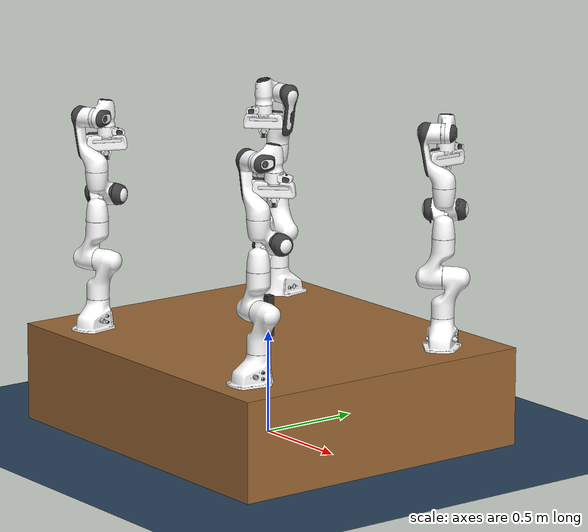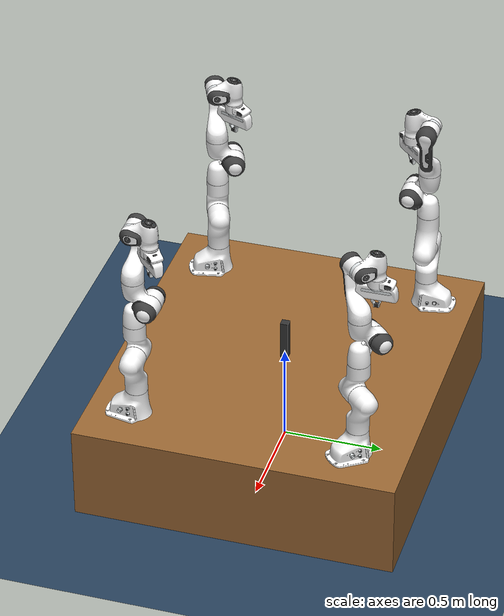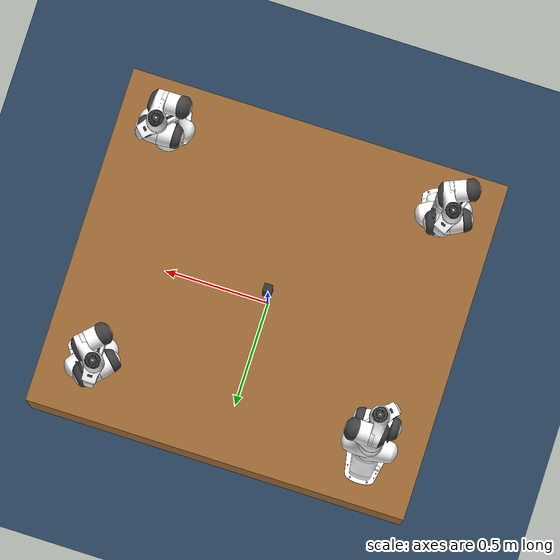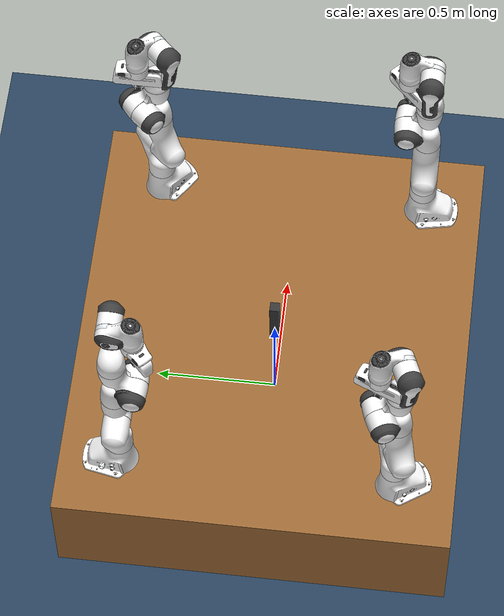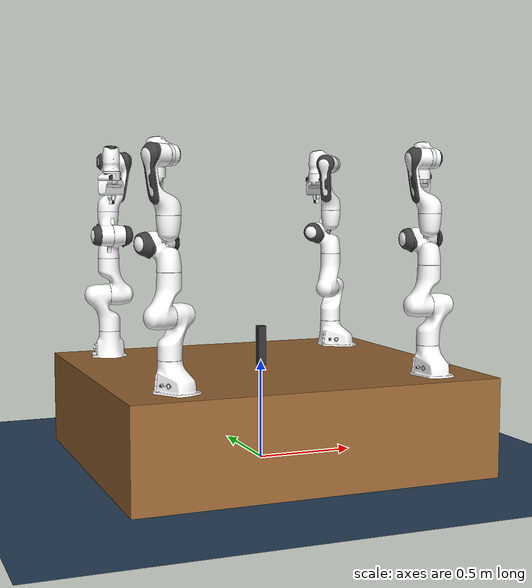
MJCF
<mujoco model="franka table scene (4 pandas original-assets)">
  <compiler angle="radian" meshdir="assets" autolimits="true"/>

  <option integrator="implicitfast"/>

  <statistic center="0 0 0.5" extent="2.0"/>

  <visual>
    <headlight diffuse="0.6 0.6 0.6" ambient="0.2 0.2 0.2" specular="0 0 0"/>
    <global azimuth="120" elevation="-20" offwidth="1280" offheight="720"/>
  </visual>

  <default>
    <default class="panda">
      <material specular="0.5" shininess="0.25"/>
      <joint armature="0.1" damping="1" axis="0 0 1" range="-2.8973 2.8973"/>
      <general dyntype="none" biastype="affine" ctrlrange="-2.8973 2.8973" forcerange="-87 87"/>
      <default class="finger">
        <joint axis="0 1 0" type="slide" range="0 0.04"/>
      </default>

      <default class="visual">
        <geom type="mesh" contype="0" conaffinity="0" group="2"/>
      </default>
      <default class="collision">
        <!-- Hide collision meshes in rendering to avoid visual artifacts -->
        <geom type="mesh" group="3" rgba="1 1 1 0"/>
        <default class="fingertip_pad_collision_1">
          <geom type="box" size="0.0085 0.004 0.0085" pos="0 0.0055 0.0445" rgba="1 1 1 0"/>
        </default>
        <default class="fingertip_pad_collision_2">
          <geom type="box" size="0.003 0.002 0.003" pos="0.0055 0.002 0.05" rgba="1 1 1 0"/>
        </default>
        <default class="fingertip_pad_collision_3">
          <geom type="box" size="0.003 0.002 0.003" pos="-0.0055 0.002 0.05" rgba="1 1 1 0"/>
        </default>
        <default class="fingertip_pad_collision_4">
          <geom type="box" size="0.003 0.002 0.0035" pos="0.0055 0.002 0.0395" rgba="1 1 1 0"/>
        </default>
        <default class="fingertip_pad_collision_5">
          <geom type="box" size="0.003 0.002 0.0035" pos="-0.0055 0.002 0.0395" rgba="1 1 1 0"/>
        </default>
      </default>
    </default>

    <!-- High-friction grippable object -->
    <default class="grippable">
      <geom friction="5.0 0.5 0.01" solimp="0.995 0.995 0.0001" solref="0.005 1" condim="6"/>
    </default>
  </default>

  <asset>
    <texture type="2d" name="groundplane" builtin="checker" mark="edge" rgb1="0.2 0.3 0.4" rgb2="0.1 0.2 0.3" markrgb="0.8 0.8 0.8" width="300" height="300"/>
    <material name="groundplane" texture="groundplane" texuniform="true" texrepeat="5 5" reflectance="0.2"/>
    <!-- Removed skybox and checker textures to avoid visual artifacts -->
    <texture type="2d" name="wood" builtin="flat" rgb1="0.6 0.4 0.2" width="100" height="100"/>
    <material name="wood" texture="wood" reflectance="0.1"/>
    <material name="object" rgba="0.8 0.2 0.2 1"/>

    <!-- Robot label materials -->
    <material name="label_robot1" rgba="1 0 0 1"/>        <!-- Bright Red -->
    <material name="label_robot2" rgba="0 0.8 1 1"/>      <!-- Cyan -->
    <material name="label_robot3" rgba="1 1 0 1"/>        <!-- Yellow -->
    <material name="label_robot4" rgba="0 1 0 1"/>        <!-- Green -->

    <!-- Panda materials -->
    <material class="panda" name="white" rgba="1 1 1 1"/>
    <material class="panda" name="off_white" rgba="0.901961 0.921569 0.929412 1"/>
    <material class="panda" name="black" rgba="0.25 0.25 0.25 1"/>
    <material class="panda" name="green" rgba="0 1 0 1"/>
    <material class="panda" name="light_blue" rgba="0.039216 0.541176 0.780392 1"/>

    <!-- Panda meshes -->
    <mesh name="link0_c" file="link0.stl"/>
    <mesh name="link1_c" file="link1.stl"/>
    <mesh name="link2_c" file="link2.stl"/>
    <mesh name="link3_c" file="link3.stl"/>
    <mesh name="link4_c" file="link4.stl"/>
    <mesh name="link5_c0" file="link5_collision_0.obj"/>
    <mesh name="link5_c1" file="link5_collision_1.obj"/>
    <mesh name="link5_c2" file="link5_collision_2.obj"/>
    <mesh name="link6_c" file="link6.stl"/>
    <mesh name="link7_c" file="link7.stl"/>
    <mesh name="hand_c" file="hand.stl"/>
    <mesh file="link0_0.obj"/>
    <mesh file="link0_1.obj"/>
    <mesh file="link0_2.obj"/>
    <mesh file="link0_3.obj"/>
    <mesh file="link0_4.obj"/>
    <mesh file="link0_5.obj"/>
    <mesh file="link0_7.obj"/>
    <mesh file="link0_8.obj"/>
    <mesh file="link0_9.obj"/>
    <mesh file="link0_10.obj"/>
    <mesh file="link0_11.obj"/>
    <mesh file="link1.obj"/>
    <mesh file="link2.obj"/>
    <mesh file="link3_0.obj"/>
    <mesh file="link3_1.obj"/>
    <mesh file="link3_2.obj"/>
    <mesh file="link3_3.obj"/>
    <mesh file="link4_0.obj"/>
    <mesh file="link4_1.obj"/>
    <mesh file="link4_2.obj"/>
    <mesh file="link4_3.obj"/>
    <mesh file="link5_0.obj"/>
    <mesh file="link5_1.obj"/>
    <mesh file="link5_2.obj"/>
    <mesh file="link6_0.obj"/>
    <mesh file="link6_1.obj"/>
    <mesh file="link6_2.obj"/>
    <mesh file="link6_3.obj"/>
    <mesh file="link6_4.obj"/>
    <mesh file="link6_5.obj"/>
    <mesh file="link6_6.obj"/>
    <mesh file="link6_7.obj"/>
    <mesh file="link6_8.obj"/>
    <mesh file="link6_9.obj"/>
    <mesh file="link6_10.obj"/>
    <mesh file="link6_11.obj"/>
    <mesh file="link6_12.obj"/>
    <mesh file="link6_13.obj"/>
    <mesh file="link6_14.obj"/>
    <mesh file="link6_15.obj"/>
    <mesh file="link6_16.obj"/>
    <mesh file="link7_0.obj"/>
    <mesh file="link7_1.obj"/>
    <mesh file="link7_2.obj"/>
    <mesh file="link7_3.obj"/>
    <mesh file="link7_4.obj"/>
    <mesh file="link7_5.obj"/>
    <mesh file="link7_6.obj"/>
    <mesh file="link7_7.obj"/>
    <mesh file="hand_0.obj"/>
    <mesh file="hand_1.obj"/>
    <mesh file="hand_2.obj"/>
    <mesh file="hand_3.obj"/>
    <mesh file="hand_4.obj"/>
    <mesh file="finger_0.obj"/>
    <mesh file="finger_1.obj"/>
  </asset>

  <worldbody>
    <light pos="0 0 2" dir="0 0 -1" directional="true" diffuse="0.8 0.8 0.8" specular="0.3 0.3 0.3"/>
    <light pos="2 0 1.5" dir="-1 0 -0.5" directional="false" diffuse="0.6 0.6 0.6" specular="0.2 0.2 0.2"/>
    <light pos="-2 0 1.5" dir="1 0 -0.5" directional="false" diffuse="0.6 0.6 0.6" specular="0.2 0.2 0.2"/>
    <light pos="0 2 1.2" dir="0 -1 -0.3" directional="false" diffuse="0.5 0.5 0.5" specular="0.1 0.1 0.1"/>
    <geom name="floor" size="0 0 0.05" type="plane" material="groundplane"/>
    <!-- Overview side camera for dataset capture (from +X looking toward -X) -->
    <camera name="side" pos="2.2 0 0.9" xyaxes="0 1 0 0 0 1" fovy="55"/>

    <!-- Table: centered at origin, 1.8m x 1.6m x 0.48m height -->
    <body name="table" pos="0 0 0.24">
      <geom type="box" size="0.9 0.8 0.24" mass="30" material="wood"/>
    </body>

    <!-- Moveable object: high-friction grippable tall box -->
    <!-- Box dimensions: 0.04m x 0.04m x 0.20m (40mm x 40mm x 200mm tall) -->
    <!-- Rubber-like properties with very high friction for easy gripping -->
    <body name="target_object" pos="0 0 0.58">
      <freejoint/>
      <geom name="target_geom" type="box" size="0.02 0.02 0.10" mass="0.20"
            rgba="0.2 0.2 0.2 1" class="grippable"/>
      <inertial pos="0 0 0" mass="0.20" diaginertia="0.0007 0.0007 0.00003"/>
    </body>

    <!-- Robot 1: Top-right corner -->
<body name="robot1_link0" pos="0.65 0.55 0.48" quat="0.3826834 0 0 0.9238795" childclass="panda">
      <!-- Robot 1 Label: Large red sphere above base -->
      <!-- Removed decorative robot label sphere to reduce visual clutter -->
      <inertial mass="0.629769" pos="-0.041018 -0.00014 0.049974"
        fullinertia="0.00315 0.00388 0.004285 8.2904e-7 0.00015 8.2299e-6"/>
      <geom mesh="link0_0" material="off_white" class="visual"/>
      <geom mesh="link0_1" material="black" class="visual"/>
      <geom mesh="link0_2" material="off_white" class="visual"/>
      <geom mesh="link0_3" material="black" class="visual"/>
      <geom mesh="link0_4" material="off_white" class="visual"/>
      <geom mesh="link0_5" material="black" class="visual"/>
      <geom mesh="link0_7" material="white" class="visual"/>
      <geom mesh="link0_8" material="white" class="visual"/>
      <geom mesh="link0_9" material="black" class="visual"/>
      <geom mesh="link0_10" material="off_white" class="visual"/>
      <geom mesh="link0_11" material="white" class="visual"/>
      <geom mesh="link0_c" class="collision"/>
      <body name="robot1_link1" pos="0 0 0.333">
        <inertial mass="4.970684" pos="0.003875 0.002081 -0.04762"
          fullinertia="0.70337 0.70661 0.0091170 -0.00013900 0.0067720 0.019169"/>
        <joint name="robot1_joint1"/>
        <geom material="white" mesh="link1" class="visual"/>
        <geom mesh="link1_c" class="collision"/>
        <body name="robot1_link2" quat="1 -1 0 0">
          <inertial mass="0.646926" pos="-0.003141 -0.02872 0.003495"
            fullinertia="0.0079620 2.8110e-2 2.5995e-2 -3.925e-3 1.0254e-2 7.04e-4"/>
          <joint name="robot1_joint2" range="-1.7628 1.7628"/>
          <geom material="white" mesh="link2" class="visual"/>
          <geom mesh="link2_c" class="collision"/>
          <body name="robot1_link3" pos="0 -0.316 0" quat="1 1 0 0">
            <joint name="robot1_joint3"/>
            <inertial mass="3.228604" pos="2.7518e-2 3.9252e-2 -6.6502e-2"
              fullinertia="3.7242e-2 3.6155e-2 1.083e-2 -4.761e-3 -1.1396e-2 -1.2805e-2"/>
            <geom mesh="link3_0" material="white" class="visual"/>
            <geom mesh="link3_1" material="white" class="visual"/>
            <geom mesh="link3_2" material="white" class="visual"/>
            <geom mesh="link3_3" material="black" class="visual"/>
            <geom mesh="link3_c" class="collision"/>
            <body name="robot1_link4" pos="0.0825 0 0" quat="1 1 0 0">
              <inertial mass="3.587895" pos="-5.317e-2 1.04419e-1 2.7454e-2"
                fullinertia="2.5853e-2 1.9552e-2 2.8323e-2 7.796e-3 -1.332e-3 8.641e-3"/>
              <joint name="robot1_joint4" range="-3.0718 -0.0698"/>
              <geom mesh="link4_0" material="white" class="visual"/>
              <geom mesh="link4_1" material="white" class="visual"/>
              <geom mesh="link4_2" material="black" class="visual"/>
              <geom mesh="link4_3" material="white" class="visual"/>
              <geom mesh="link4_c" class="collision"/>
              <body name="robot1_link5" pos="-0.0825 0.384 0" quat="1 -1 0 0">
                <inertial mass="1.225946" pos="-1.1953e-2 4.1065e-2 -3.8437e-2"
                  fullinertia="3.5549e-2 2.9474e-2 8.627e-3 -2.117e-3 -4.037e-3 2.29e-4"/>
                <joint name="robot1_joint5"/>
                <geom mesh="link5_0" material="black" class="visual"/>
                <geom mesh="link5_1" material="white" class="visual"/>
                <geom mesh="link5_2" material="white" class="visual"/>
                <geom mesh="link5_c0" class="collision"/>
                <geom mesh="link5_c1" class="collision"/>
                <geom mesh="link5_c2" class="collision"/>
                <body name="robot1_link6" quat="1 1 0 0">
                  <inertial mass="1.666555" pos="6.0149e-2 -1.4117e-2 -1.0517e-2"
                    fullinertia="1.964e-3 4.354e-3 5.433e-3 1.09e-4 -1.158e-3 3.41e-4"/>
                  <joint name="robot1_joint6" range="-0.0175 3.7525"/>
                  <geom mesh="link6_0" material="off_white" class="visual"/>
                  <geom mesh="link6_1" material="white" class="visual"/>
                  <geom mesh="link6_2" material="black" class="visual"/>
                  <geom mesh="link6_3" material="white" class="visual"/>
                  <geom mesh="link6_4" material="white" class="visual"/>
                  <geom mesh="link6_5" material="white" class="visual"/>
                  <geom mesh="link6_6" material="white" class="visual"/>
                  <geom mesh="link6_7" material="light_blue" class="visual"/>
                  <geom mesh="link6_8" material="light_blue" class="visual"/>
                  <geom mesh="link6_9" material="black" class="visual"/>
                  <geom mesh="link6_10" material="black" class="visual"/>
                  <geom mesh="link6_11" material="white" class="visual"/>
                  <geom mesh="link6_12" material="green" class="visual"/>
                  <geom mesh="link6_13" material="white" class="visual"/>
                  <geom mesh="link6_14" material="black" class="visual"/>
                  <geom mesh="link6_15" material="black" class="visual"/>
                  <geom mesh="link6_16" material="white" class="visual"/>
                  <geom mesh="link6_c" class="collision"/>
                  <body name="robot1_link7" pos="0.088 0 0" quat="1 1 0 0">
                    <inertial mass="7.35522e-01" pos="1.0517e-2 -4.252e-3 6.1597e-2"
                      fullinertia="1.2516e-2 1.0027e-2 4.815e-3 -4.28e-4 -1.196e-3 -7.41e-4"/>
                    <joint name="robot1_joint7"/>
                    <geom mesh="link7_0" material="white" class="visual"/>
                    <geom mesh="link7_1" material="black" class="visual"/>
                    <geom mesh="link7_2" material="black" class="visual"/>
                    <geom mesh="link7_3" material="black" class="visual"/>
                    <geom mesh="link7_4" material="black" class="visual"/>
                    <geom mesh="link7_5" material="black" class="visual"/>
                    <geom mesh="link7_6" material="black" class="visual"/>
                    <geom mesh="link7_7" material="white" class="visual"/>
                    <geom mesh="link7_c" class="collision"/>
                    <body name="robot1_hand" pos="0 0 0.107" quat="0.9238795 0 0 -0.3826834">
                      <inertial mass="0.73" pos="-0.01 0 0.03" diaginertia="0.001 0.0025 0.0017"/>
                      <geom mesh="hand_0" material="off_white" class="visual"/>
                      <geom mesh="hand_1" material="black" class="visual"/>
                      <geom mesh="hand_2" material="black" class="visual"/>
                      <geom mesh="hand_3" material="white" class="visual"/>
                      <geom mesh="hand_4" material="off_white" class="visual"/>
                      <geom mesh="hand_c" class="collision"/>
                      <!-- Invisible gripper site for position tracking in optimize_pickup.py -->
                      <site name="robot1_gripper_center" pos="0 0 0.1034" size="0.01" rgba="0 0 0 0"/>
                      <!-- Wrist camera for robot 1 -->
                      <camera name="robot1_wrist" pos="0 0 0.12" fovy="80"/>
                      <body name="robot1_left_finger" pos="0 0 0.0584">
                        <inertial mass="0.015" pos="0 0 0" diaginertia="2.375e-6 2.375e-6 7.5e-7"/>
                        <joint name="robot1_finger_joint1" class="finger"/>
                        <geom mesh="finger_0" material="off_white" class="visual"/>
                        <geom mesh="finger_1" material="black" class="visual"/>
                        <geom mesh="finger_0" class="collision"/>
                        <geom class="fingertip_pad_collision_1"/>
                        <geom class="fingertip_pad_collision_2"/>
                        <geom class="fingertip_pad_collision_3"/>
                        <geom class="fingertip_pad_collision_4"/>
                        <geom class="fingertip_pad_collision_5"/>
                      </body>
                      <body name="robot1_right_finger" pos="0 0 0.0584" quat="0 0 0 1">
                        <inertial mass="0.015" pos="0 0 0" diaginertia="2.375e-6 2.375e-6 7.5e-7"/>
                        <joint name="robot1_finger_joint2" class="finger"/>
                        <geom mesh="finger_0" material="off_white" class="visual"/>
                        <geom mesh="finger_1" material="black" class="visual"/>
                        <geom mesh="finger_0" class="collision"/>
                        <geom class="fingertip_pad_collision_1"/>
                        <geom class="fingertip_pad_collision_2"/>
                        <geom class="fingertip_pad_collision_3"/>
                        <geom class="fingertip_pad_collision_4"/>
                        <geom class="fingertip_pad_collision_5"/>
                      </body>
                    </body>
                  </body>
                </body>
              </body>
            </body>
          </body>
        </body>
      </body>
    </body>
    <!-- Robot 2: Top-left corner -->
<body name="robot2_link0" pos="-0.65 0.55 0.48" quat="-1 0 0 1" childclass="panda">
      <!-- Robot 2 Label: Large cyan sphere above base -->
      <!-- Removed decorative robot label sphere to reduce visual clutter -->
      <inertial mass="0.629769" pos="-0.041018 -0.00014 0.049974"
        fullinertia="0.00315 0.00388 0.004285 8.2904e-7 0.00015 8.2299e-6"/>
      <geom mesh="link0_0" material="off_white" class="visual"/>
      <geom mesh="link0_1" material="black" class="visual"/>
      <geom mesh="link0_2" material="off_white" class="visual"/>
      <geom mesh="link0_3" material="black" class="visual"/>
      <geom mesh="link0_4" material="off_white" class="visual"/>
      <geom mesh="link0_5" material="black" class="visual"/>
      <geom mesh="link0_7" material="white" class="visual"/>
      <geom mesh="link0_8" material="white" class="visual"/>
      <geom mesh="link0_9" material="black" class="visual"/>
      <geom mesh="link0_10" material="off_white" class="visual"/>
      <geom mesh="link0_11" material="white" class="visual"/>
      <geom mesh="link0_c" class="collision"/>
      <body name="robot2_link1" pos="0 0 0.333">
        <inertial mass="4.970684" pos="0.003875 0.002081 -0.04762"
          fullinertia="0.70337 0.70661 0.0091170 -0.00013900 0.0067720 0.019169"/>
        <joint name="robot2_joint1"/>
        <geom material="white" mesh="link1" class="visual"/>
        <geom mesh="link1_c" class="collision"/>
        <body name="robot2_link2" quat="1 -1 0 0">
          <inertial mass="0.646926" pos="-0.003141 -0.02872 0.003495"
            fullinertia="0.0079620 2.8110e-2 2.5995e-2 -3.925e-3 1.0254e-2 7.04e-4"/>
          <joint name="robot2_joint2" range="-1.7628 1.7628"/>
          <geom material="white" mesh="link2" class="visual"/>
          <geom mesh="link2_c" class="collision"/>
          <body name="robot2_link3" pos="0 -0.316 0" quat="1 1 0 0">
            <joint name="robot2_joint3"/>
            <inertial mass="3.228604" pos="2.7518e-2 3.9252e-2 -6.6502e-2"
              fullinertia="3.7242e-2 3.6155e-2 1.083e-2 -4.761e-3 -1.1396e-2 -1.2805e-2"/>
            <geom mesh="link3_0" material="white" class="visual"/>
            <geom mesh="link3_1" material="white" class="visual"/>
            <geom mesh="link3_2" material="white" class="visual"/>
            <geom mesh="link3_3" material="black" class="visual"/>
            <geom mesh="link3_c" class="collision"/>
            <body name="robot2_link4" pos="0.0825 0 0" quat="1 1 0 0">
              <inertial mass="3.587895" pos="-5.317e-2 1.04419e-1 2.7454e-2"
                fullinertia="2.5853e-2 1.9552e-2 2.8323e-2 7.796e-3 -1.332e-3 8.641e-3"/>
              <joint name="robot2_joint4" range="-3.0718 -0.0698"/>
              <geom mesh="link4_0" material="white" class="visual"/>
              <geom mesh="link4_1" material="white" class="visual"/>
              <geom mesh="link4_2" material="black" class="visual"/>
              <geom mesh="link4_3" material="white" class="visual"/>
              <geom mesh="link4_c" class="collision"/>
              <body name="robot2_link5" pos="-0.0825 0.384 0" quat="1 -1 0 0">
                <inertial mass="1.225946" pos="-1.1953e-2 4.1065e-2 -3.8437e-2"
                  fullinertia="3.5549e-2 2.9474e-2 8.627e-3 -2.117e-3 -4.037e-3 2.29e-4"/>
                <joint name="robot2_joint5"/>
                <geom mesh="link5_0" material="black" class="visual"/>
                <geom mesh="link5_1" material="white" class="visual"/>
                <geom mesh="link5_2" material="white" class="visual"/>
                <geom mesh="link5_c0" class="collision"/>
                <geom mesh="link5_c1" class="collision"/>
                <geom mesh="link5_c2" class="collision"/>
                <body name="robot2_link6" quat="1 1 0 0">
                  <inertial mass="1.666555" pos="6.0149e-2 -1.4117e-2 -1.0517e-2"
                    fullinertia="1.964e-3 4.354e-3 5.433e-3 1.09e-4 -1.158e-3 3.41e-4"/>
                  <joint name="robot2_joint6" range="-0.0175 3.7525"/>
                  <geom mesh="link6_0" material="off_white" class="visual"/>
                  <geom mesh="link6_1" material="white" class="visual"/>
                  <geom mesh="link6_2" material="black" class="visual"/>
                  <geom mesh="link6_3" material="white" class="visual"/>
                  <geom mesh="link6_4" material="white" class="visual"/>
                  <geom mesh="link6_5" material="white" class="visual"/>
                  <geom mesh="link6_6" material="white" class="visual"/>
                  <geom mesh="link6_7" material="light_blue" class="visual"/>
                  <geom mesh="link6_8" material="light_blue" class="visual"/>
                  <geom mesh="link6_9" material="black" class="visual"/>
                  <geom mesh="link6_10" material="black" class="visual"/>
                  <geom mesh="link6_11" material="white" class="visual"/>
                  <geom mesh="link6_12" material="green" class="visual"/>
                  <geom mesh="link6_13" material="white" class="visual"/>
                  <geom mesh="link6_14" material="black" class="visual"/>
                  <geom mesh="link6_15" material="black" class="visual"/>
                  <geom mesh="link6_16" material="white" class="visual"/>
                  <geom mesh="link6_c" class="collision"/>
                  <body name="robot2_link7" pos="0.088 0 0" quat="1 1 0 0">
                    <inertial mass="7.35522e-01" pos="1.0517e-2 -4.252e-3 6.1597e-2"
                      fullinertia="1.2516e-2 1.0027e-2 4.815e-3 -4.28e-4 -1.196e-3 -7.41e-4"/>
                    <joint name="robot2_joint7"/>
                    <geom mesh="link7_0" material="white" class="visual"/>
                    <geom mesh="link7_1" material="black" class="visual"/>
                    <geom mesh="link7_2" material="black" class="visual"/>
                    <geom mesh="link7_3" material="black" class="visual"/>
                    <geom mesh="link7_4" material="black" class="visual"/>
                    <geom mesh="link7_5" material="black" class="visual"/>
                    <geom mesh="link7_6" material="black" class="visual"/>
                    <geom mesh="link7_7" material="white" class="visual"/>
                    <geom mesh="link7_c" class="collision"/>
                    <body name="robot2_hand" pos="0 0 0.107" quat="0.9238795 0 0 -0.3826834">
                      <inertial mass="0.73" pos="-0.01 0 0.03" diaginertia="0.001 0.0025 0.0017"/>
                      <geom mesh="hand_0" material="off_white" class="visual"/>
                      <geom mesh="hand_1" material="black" class="visual"/>
                      <geom mesh="hand_2" material="black" class="visual"/>
                      <geom mesh="hand_3" material="white" class="visual"/>
                      <geom mesh="hand_4" material="off_white" class="visual"/>
                      <geom mesh="hand_c" class="collision"/>
                      <!-- Invisible gripper site for position tracking -->
                      <site name="robot2_gripper_center" pos="0 0 0.1034" size="0.01" rgba="0 0 0 0"/>
                      <!-- Wrist camera for robot 2 -->
                      <camera name="robot2_wrist" pos="0 0 0.12" fovy="80"/>
                      <body name="robot2_left_finger" pos="0 0 0.0584">
                        <inertial mass="0.015" pos="0 0 0" diaginertia="2.375e-6 2.375e-6 7.5e-7"/>
                        <joint name="robot2_finger_joint1" class="finger"/>
                        <geom mesh="finger_0" material="off_white" class="visual"/>
                        <geom mesh="finger_1" material="black" class="visual"/>
                        <geom mesh="finger_0" class="collision"/>
                        <geom class="fingertip_pad_collision_1"/>
                        <geom class="fingertip_pad_collision_2"/>
                        <geom class="fingertip_pad_collision_3"/>
                        <geom class="fingertip_pad_collision_4"/>
                        <geom class="fingertip_pad_collision_5"/>
                      </body>
                      <body name="robot2_right_finger" pos="0 0 0.0584" quat="0 0 0 1">
                        <inertial mass="0.015" pos="0 0 0" diaginertia="2.375e-6 2.375e-6 7.5e-7"/>
                        <joint name="robot2_finger_joint2" class="finger"/>
                        <geom mesh="finger_0" material="off_white" class="visual"/>
                        <geom mesh="finger_1" material="black" class="visual"/>
                        <geom mesh="finger_0" class="collision"/>
                        <geom class="fingertip_pad_collision_1"/>
                        <geom class="fingertip_pad_collision_2"/>
                        <geom class="fingertip_pad_collision_3"/>
                        <geom class="fingertip_pad_collision_4"/>
                        <geom class="fingertip_pad_collision_5"/>
                      </body>
                    </body>
                  </body>
                </body>
              </body>
            </body>
          </body>
        </body>
      </body>
    </body>
    <!-- Robot 3: Bottom-left corner -->
<body name="robot3_link0" pos="-0.65 -0.55 0.48" quat="1 0 0 1.5" childclass="panda">
      <!-- Robot 3 Label: Large yellow sphere above base -->
      <!-- Removed decorative robot label sphere to reduce visual clutter -->
      <inertial mass="0.629769" pos="-0.041018 -0.00014 0.049974"
        fullinertia="0.00315 0.00388 0.004285 8.2904e-7 0.00015 8.2299e-6"/>
      <geom mesh="link0_0" material="off_white" class="visual"/>
      <geom mesh="link0_1" material="black" class="visual"/>
      <geom mesh="link0_2" material="off_white" class="visual"/>
      <geom mesh="link0_3" material="black" class="visual"/>
      <geom mesh="link0_4" material="off_white" class="visual"/>
      <geom mesh="link0_5" material="black" class="visual"/>
      <geom mesh="link0_7" material="white" class="visual"/>
      <geom mesh="link0_8" material="white" class="visual"/>
      <geom mesh="link0_9" material="black" class="visual"/>
      <geom mesh="link0_10" material="off_white" class="visual"/>
      <geom mesh="link0_11" material="white" class="visual"/>
      <geom mesh="link0_c" class="collision"/>
      <body name="robot3_link1" pos="0 0 0.333">
        <inertial mass="4.970684" pos="0.003875 0.002081 -0.04762"
          fullinertia="0.70337 0.70661 0.0091170 -0.00013900 0.0067720 0.019169"/>
        <joint name="robot3_joint1"/>
        <geom material="white" mesh="link1" class="visual"/>
        <geom mesh="link1_c" class="collision"/>
        <body name="robot3_link2" quat="1 -1 0 0">
          <inertial mass="0.646926" pos="-0.003141 -0.02872 0.003495"
            fullinertia="0.0079620 2.8110e-2 2.5995e-2 -3.925e-3 1.0254e-2 7.04e-4"/>
          <joint name="robot3_joint2" range="-1.7628 1.7628"/>
          <geom material="white" mesh="link2" class="visual"/>
          <geom mesh="link2_c" class="collision"/>
          <body name="robot3_link3" pos="0 -0.316 0" quat="1 1 0 0">
            <joint name="robot3_joint3"/>
            <inertial mass="3.228604" pos="2.7518e-2 3.9252e-2 -6.6502e-2"
              fullinertia="3.7242e-2 3.6155e-2 1.083e-2 -4.761e-3 -1.1396e-2 -1.2805e-2"/>
            <geom mesh="link3_0" material="white" class="visual"/>
            <geom mesh="link3_1" material="white" class="visual"/>
            <geom mesh="link3_2" material="white" class="visual"/>
            <geom mesh="link3_3" material="black" class="visual"/>
            <geom mesh="link3_c" class="collision"/>
            <body name="robot3_link4" pos="0.0825 0 0" quat="1 1 0 0">
              <inertial mass="3.587895" pos="-5.317e-2 1.04419e-1 2.7454e-2"
                fullinertia="2.5853e-2 1.9552e-2 2.8323e-2 7.796e-3 -1.332e-3 8.641e-3"/>
              <joint name="robot3_joint4" range="-3.0718 -0.0698"/>
              <geom mesh="link4_0" material="white" class="visual"/>
              <geom mesh="link4_1" material="white" class="visual"/>
              <geom mesh="link4_2" material="black" class="visual"/>
              <geom mesh="link4_3" material="white" class="visual"/>
              <geom mesh="link4_c" class="collision"/>
              <body name="robot3_link5" pos="-0.0825 0.384 0" quat="1 -1 0 0">
                <inertial mass="1.225946" pos="-1.1953e-2 4.1065e-2 -3.8437e-2"
                  fullinertia="3.5549e-2 2.9474e-2 8.627e-3 -2.117e-3 -4.037e-3 2.29e-4"/>
                <joint name="robot3_joint5"/>
                <geom mesh="link5_0" material="black" class="visual"/>
                <geom mesh="link5_1" material="white" class="visual"/>
                <geom mesh="link5_2" material="white" class="visual"/>
                <geom mesh="link5_c0" class="collision"/>
                <geom mesh="link5_c1" class="collision"/>
                <geom mesh="link5_c2" class="collision"/>
                <body name="robot3_link6" quat="1 1 0 0">
                  <inertial mass="1.666555" pos="6.0149e-2 -1.4117e-2 -1.0517e-2"
                    fullinertia="1.964e-3 4.354e-3 5.433e-3 1.09e-4 -1.158e-3 3.41e-4"/>
                  <joint name="robot3_joint6" range="-0.0175 3.7525"/>
                  <geom mesh="link6_0" material="off_white" class="visual"/>
                  <geom mesh="link6_1" material="white" class="visual"/>
                  <geom mesh="link6_2" material="black" class="visual"/>
                  <geom mesh="link6_3" material="white" class="visual"/>
                  <geom mesh="link6_4" material="white" class="visual"/>
                  <geom mesh="link6_5" material="white" class="visual"/>
                  <geom mesh="link6_6" material="white" class="visual"/>
                  <geom mesh="link6_7" material="light_blue" class="visual"/>
                  <geom mesh="link6_8" material="light_blue" class="visual"/>
                  <geom mesh="link6_9" material="black" class="visual"/>
                  <geom mesh="link6_10" material="black" class="visual"/>
                  <geom mesh="link6_11" material="white" class="visual"/>
                  <geom mesh="link6_12" material="green" class="visual"/>
                  <geom mesh="link6_13" material="white" class="visual"/>
                  <geom mesh="link6_14" material="black" class="visual"/>
                  <geom mesh="link6_15" material="black" class="visual"/>
                  <geom mesh="link6_16" material="white" class="visual"/>
                  <geom mesh="link6_c" class="collision"/>
                  <body name="robot3_link7" pos="0.088 0 0" quat="1 1 0 0">
                    <inertial mass="7.35522e-01" pos="1.0517e-2 -4.252e-3 6.1597e-2"
                      fullinertia="1.2516e-2 1.0027e-2 4.815e-3 -4.28e-4 -1.196e-3 -7.41e-4"/>
                    <joint name="robot3_joint7"/>
                    <geom mesh="link7_0" material="white" class="visual"/>
                    <geom mesh="link7_1" material="black" class="visual"/>
                    <geom mesh="link7_2" material="black" class="visual"/>
                    <geom mesh="link7_3" material="black" class="visual"/>
                    <geom mesh="link7_4" material="black" class="visual"/>
                    <geom mesh="link7_5" material="black" class="visual"/>
                    <geom mesh="link7_6" material="black" class="visual"/>
                    <geom mesh="link7_7" material="white" class="visual"/>
                    <geom mesh="link7_c" class="collision"/>
                    <body name="robot3_hand" pos="0 0 0.107" quat="0.9238795 0 0 -0.3826834">
                      <inertial mass="0.73" pos="-0.01 0 0.03" diaginertia="0.001 0.0025 0.0017"/>
                      <geom mesh="hand_0" material="off_white" class="visual"/>
                      <geom mesh="hand_1" material="black" class="visual"/>
                      <geom mesh="hand_2" material="black" class="visual"/>
                      <geom mesh="hand_3" material="white" class="visual"/>
                      <geom mesh="hand_4" material="off_white" class="visual"/>
                      <geom mesh="hand_c" class="collision"/>
                      <!-- Invisible gripper site for position tracking -->
                      <site name="robot3_gripper_center" pos="0 0 0.1034" size="0.01" rgba="0 0 0 0"/>
                      <!-- Wrist camera for robot 3 -->
                      <camera name="robot3_wrist" pos="0 0 0.12" fovy="80"/>
                      <body name="robot3_left_finger" pos="0 0 0.0584">
                        <inertial mass="0.015" pos="0 0 0" diaginertia="2.375e-6 2.375e-6 7.5e-7"/>
                        <joint name="robot3_finger_joint1" class="finger"/>
                        <geom mesh="finger_0" material="off_white" class="visual"/>
                        <geom mesh="finger_1" material="black" class="visual"/>
                        <geom mesh="finger_0" class="collision"/>
                        <geom class="fingertip_pad_collision_1"/>
                        <geom class="fingertip_pad_collision_2"/>
                        <geom class="fingertip_pad_collision_3"/>
                        <geom class="fingertip_pad_collision_4"/>
                        <geom class="fingertip_pad_collision_5"/>
                      </body>
                      <body name="robot3_right_finger" pos="0 0 0.0584" quat="0 0 0 1">
                        <inertial mass="0.015" pos="0 0 0" diaginertia="2.375e-6 2.375e-6 7.5e-7"/>
                        <joint name="robot3_finger_joint2" class="finger"/>
                        <geom mesh="finger_0" material="off_white" class="visual"/>
                        <geom mesh="finger_1" material="black" class="visual"/>
                        <geom mesh="finger_0" class="collision"/>
                        <geom class="fingertip_pad_collision_1"/>
                        <geom class="fingertip_pad_collision_2"/>
                        <geom class="fingertip_pad_collision_3"/>
                        <geom class="fingertip_pad_collision_4"/>
                        <geom class="fingertip_pad_collision_5"/>
                      </body>
                    </body>
                  </body>
                </body>
              </body>
            </body>
          </body>
        </body>
      </body>
    </body>
    <!-- Robot 4: Bottom-right corner -->
<body name="robot4_link0" pos="0.65 -0.55 0.48" quat="0.7071068 0 0 0.7071068" childclass="panda">
      <!-- Robot 4 Label: Large green sphere above base -->
      <!-- Removed decorative robot label sphere to reduce visual clutter -->
      <inertial mass="0.629769" pos="-0.041018 -0.00014 0.049974"
        fullinertia="0.00315 0.00388 0.004285 8.2904e-7 0.00015 8.2299e-6"/>
      <geom mesh="link0_0" material="off_white" class="visual"/>
      <geom mesh="link0_1" material="black" class="visual"/>
      <geom mesh="link0_2" material="off_white" class="visual"/>
      <geom mesh="link0_3" material="black" class="visual"/>
      <geom mesh="link0_4" material="off_white" class="visual"/>
      <geom mesh="link0_5" material="black" class="visual"/>
      <geom mesh="link0_7" material="white" class="visual"/>
      <geom mesh="link0_8" material="white" class="visual"/>
      <geom mesh="link0_9" material="black" class="visual"/>
      <geom mesh="link0_10" material="off_white" class="visual"/>
      <geom mesh="link0_11" material="white" class="visual"/>
      <geom mesh="link0_c" class="collision"/>
      <body name="robot4_link1" pos="0 0 0.333">
        <inertial mass="4.970684" pos="0.003875 0.002081 -0.04762"
          fullinertia="0.70337 0.70661 0.0091170 -0.00013900 0.0067720 0.019169"/>
        <joint name="robot4_joint1"/>
        <geom material="white" mesh="link1" class="visual"/>
        <geom mesh="link1_c" class="collision"/>
        <body name="robot4_link2" quat="1 -1 0 0">
          <inertial mass="0.646926" pos="-0.003141 -0.02872 0.003495"
            fullinertia="0.0079620 2.8110e-2 2.5995e-2 -3.925e-3 1.0254e-2 7.04e-4"/>
          <joint name="robot4_joint2" range="-1.7628 1.7628"/>
          <geom material="white" mesh="link2" class="visual"/>
          <geom mesh="link2_c" class="collision"/>
          <body name="robot4_link3" pos="0 -0.316 0" quat="1 1 0 0">
            <joint name="robot4_joint3"/>
            <inertial mass="3.228604" pos="2.7518e-2 3.9252e-2 -6.6502e-2"
              fullinertia="3.7242e-2 3.6155e-2 1.083e-2 -4.761e-3 -1.1396e-2 -1.2805e-2"/>
            <geom mesh="link3_0" material="white" class="visual"/>
            <geom mesh="link3_1" material="white" class="visual"/>
            <geom mesh="link3_2" material="white" class="visual"/>
            <geom mesh="link3_3" material="black" class="visual"/>
            <geom mesh="link3_c" class="collision"/>
            <body name="robot4_link4" pos="0.0825 0 0" quat="1 1 0 0">
              <inertial mass="3.587895" pos="-5.317e-2 1.04419e-1 2.7454e-2"
                fullinertia="2.5853e-2 1.9552e-2 2.8323e-2 7.796e-3 -1.332e-3 8.641e-3"/>
              <joint name="robot4_joint4" range="-3.0718 -0.0698"/>
              <geom mesh="link4_0" material="white" class="visual"/>
              <geom mesh="link4_1" material="white" class="visual"/>
              <geom mesh="link4_2" material="black" class="visual"/>
              <geom mesh="link4_3" material="white" class="visual"/>
              <geom mesh="link4_c" class="collision"/>
              <body name="robot4_link5" pos="-0.0825 0.384 0" quat="1 -1 0 0">
                <inertial mass="1.225946" pos="-1.1953e-2 4.1065e-2 -3.8437e-2"
                  fullinertia="3.5549e-2 2.9474e-2 8.627e-3 -2.117e-3 -4.037e-3 2.29e-4"/>
                <joint name="robot4_joint5"/>
                <geom mesh="link5_0" material="black" class="visual"/>
                <geom mesh="link5_1" material="white" class="visual"/>
                <geom mesh="link5_2" material="white" class="visual"/>
                <geom mesh="link5_c0" class="collision"/>
                <geom mesh="link5_c1" class="collision"/>
                <geom mesh="link5_c2" class="collision"/>
                <body name="robot4_link6" quat="1 1 0 0">
                  <inertial mass="1.666555" pos="6.0149e-2 -1.4117e-2 -1.0517e-2"
                    fullinertia="1.964e-3 4.354e-3 5.433e-3 1.09e-4 -1.158e-3 3.41e-4"/>
                  <joint name="robot4_joint6" range="-0.0175 3.7525"/>
                  <geom mesh="link6_0" material="off_white" class="visual"/>
                  <geom mesh="link6_1" material="white" class="visual"/>
                  <geom mesh="link6_2" material="black" class="visual"/>
                  <geom mesh="link6_3" material="white" class="visual"/>
                  <geom mesh="link6_4" material="white" class="visual"/>
                  <geom mesh="link6_5" material="white" class="visual"/>
                  <geom mesh="link6_6" material="white" class="visual"/>
                  <geom mesh="link6_7" material="light_blue" class="visual"/>
                  <geom mesh="link6_8" material="light_blue" class="visual"/>
                  <geom mesh="link6_9" material="black" class="visual"/>
                  <geom mesh="link6_10" material="black" class="visual"/>
                  <geom mesh="link6_11" material="white" class="visual"/>
                  <geom mesh="link6_12" material="green" class="visual"/>
                  <geom mesh="link6_13" material="white" class="visual"/>
                  <geom mesh="link6_14" material="black" class="visual"/>
                  <geom mesh="link6_15" material="black" class="visual"/>
                  <geom mesh="link6_16" material="white" class="visual"/>
                  <geom mesh="link6_c" class="collision"/>
                  <body name="robot4_link7" pos="0.088 0 0" quat="1 1 0 0">
                    <inertial mass="7.35522e-01" pos="1.0517e-2 -4.252e-3 6.1597e-2"
                      fullinertia="1.2516e-2 1.0027e-2 4.815e-3 -4.28e-4 -1.196e-3 -7.41e-4"/>
                    <joint name="robot4_joint7"/>
                    <geom mesh="link7_0" material="white" class="visual"/>
                    <geom mesh="link7_1" material="black" class="visual"/>
                    <geom mesh="link7_2" material="black" class="visual"/>
                    <geom mesh="link7_3" material="black" class="visual"/>
                    <geom mesh="link7_4" material="black" class="visual"/>
                    <geom mesh="link7_5" material="black" class="visual"/>
                    <geom mesh="link7_6" material="black" class="visual"/>
                    <geom mesh="link7_7" material="white" class="visual"/>
                    <geom mesh="link7_c" class="collision"/>
                    <body name="robot4_hand" pos="0 0 0.107" quat="0.9238795 0 0 -0.3826834">
                      <inertial mass="0.73" pos="-0.01 0 0.03" diaginertia="0.001 0.0025 0.0017"/>
                      <geom mesh="hand_0" material="off_white" class="visual"/>
                      <geom mesh="hand_1" material="black" class="visual"/>
                      <geom mesh="hand_2" material="black" class="visual"/>
                      <geom mesh="hand_3" material="white" class="visual"/>
                      <geom mesh="hand_4" material="off_white" class="visual"/>
                      <geom mesh="hand_c" class="collision"/>
                      <!-- Invisible gripper site for position tracking -->
                      <site name="robot4_gripper_center" pos="0 0 0.1034" size="0.01" rgba="0 0 0 0"/>
                      <!-- Wrist camera for robot 4 -->
                      <camera name="robot4_wrist" pos="0 0 0.12" fovy="80"/>
                      <body name="robot4_left_finger" pos="0 0 0.0584">
                        <inertial mass="0.015" pos="0 0 0" diaginertia="2.375e-6 2.375e-6 7.5e-7"/>
                        <joint name="robot4_finger_joint1" class="finger"/>
                        <geom mesh="finger_0" material="off_white" class="visual"/>
                        <geom mesh="finger_1" material="black" class="visual"/>
                        <geom mesh="finger_0" class="collision"/>
                        <geom class="fingertip_pad_collision_1"/>
                        <geom class="fingertip_pad_collision_2"/>
                        <geom class="fingertip_pad_collision_3"/>
                        <geom class="fingertip_pad_collision_4"/>
                        <geom class="fingertip_pad_collision_5"/>
                      </body>
                      <body name="robot4_right_finger" pos="0 0 0.0584" quat="0 0 0 1">
                        <inertial mass="0.015" pos="0 0 0" diaginertia="2.375e-6 2.375e-6 7.5e-7"/>
                        <joint name="robot4_finger_joint2" class="finger"/>
                        <geom mesh="finger_0" material="off_white" class="visual"/>
                        <geom mesh="finger_1" material="black" class="visual"/>
                        <geom mesh="finger_0" class="collision"/>
                        <geom class="fingertip_pad_collision_1"/>
                        <geom class="fingertip_pad_collision_2"/>
                        <geom class="fingertip_pad_collision_3"/>
                        <geom class="fingertip_pad_collision_4"/>
                        <geom class="fingertip_pad_collision_5"/>
                      </body>
                    </body>
                  </body>
                </body>
              </body>
            </body>
          </body>
        </body>
      </body>
    </body>
  </worldbody>

  <tendon>
    <!-- Robot 1: Top-right corner tendons -->
    <fixed name="robot1_split">
      <joint joint="robot1_finger_joint1" coef="0.5"/>
      <joint joint="robot1_finger_joint2" coef="0.5"/>
    </fixed>

    <!-- Robot 2: Top-left corner tendons -->
    <fixed name="robot2_split">
      <joint joint="robot2_finger_joint1" coef="0.5"/>
      <joint joint="robot2_finger_joint2" coef="0.5"/>
    </fixed>

    <!-- Robot 3: Bottom-left corner tendons -->
    <fixed name="robot3_split">
      <joint joint="robot3_finger_joint1" coef="0.5"/>
      <joint joint="robot3_finger_joint2" coef="0.5"/>
    </fixed>

    <!-- Robot 4: Bottom-right corner tendons -->
    <fixed name="robot4_split">
      <joint joint="robot4_finger_joint1" coef="0.5"/>
      <joint joint="robot4_finger_joint2" coef="0.5"/>
    </fixed>

  </tendon>

  <equality>
    <joint joint1="robot1_finger_joint1" joint2="robot1_finger_joint2" solimp="0.95 0.99 0.001" solref="0.005 1"/>

    <joint joint1="robot2_finger_joint1" joint2="robot2_finger_joint2" solimp="0.95 0.99 0.001" solref="0.005 1"/>

    <joint joint1="robot3_finger_joint1" joint2="robot3_finger_joint2" solimp="0.95 0.99 0.001" solref="0.005 1"/>

    <joint joint1="robot4_finger_joint1" joint2="robot4_finger_joint2" solimp="0.95 0.99 0.001" solref="0.005 1"/>

  </equality>

  <actuator>
    <!-- Robot 1: Top-right corner actuators -->
    <general class="panda" name="robot1_actuator1" joint="robot1_joint1" gainprm="4500" biasprm="0 -4500 -450"/>
    <general class="panda" name="robot1_actuator2" joint="robot1_joint2" gainprm="4500" biasprm="0 -4500 -450"
      ctrlrange="-1.7628 1.7628"/>
    <general class="panda" name="robot1_actuator3" joint="robot1_joint3" gainprm="3500" biasprm="0 -3500 -350"/>
    <general class="panda" name="robot1_actuator4" joint="robot1_joint4" gainprm="3500" biasprm="0 -3500 -350"
      ctrlrange="-3.0718 -0.0698"/>
    <general class="panda" name="robot1_actuator5" joint="robot1_joint5" gainprm="2000" biasprm="0 -2000 -200" forcerange="-12 12"/>
    <general class="panda" name="robot1_actuator6" joint="robot1_joint6" gainprm="2000" biasprm="0 -2000 -200" forcerange="-12 12"
      ctrlrange="-0.0175 3.7525"/>
    <general class="panda" name="robot1_actuator7" joint="robot1_joint7" gainprm="2000" biasprm="0 -2000 -200" forcerange="-12 12"/>
    <general class="panda" name="robot1_actuator8" tendon="robot1_split" forcerange="-100 100" ctrlrange="0 255"
      gainprm="0.01568627451 0 0" biasprm="0 -100 -10"/>

    <!-- Robot 2: Top-left corner actuators -->
    <general class="panda" name="robot2_actuator1" joint="robot2_joint1" gainprm="4500" biasprm="0 -4500 -450"/>
    <general class="panda" name="robot2_actuator2" joint="robot2_joint2" gainprm="4500" biasprm="0 -4500 -450"
      ctrlrange="-1.7628 1.7628"/>
    <general class="panda" name="robot2_actuator3" joint="robot2_joint3" gainprm="3500" biasprm="0 -3500 -350"/>
    <general class="panda" name="robot2_actuator4" joint="robot2_joint4" gainprm="3500" biasprm="0 -3500 -350"
      ctrlrange="-3.0718 -0.0698"/>
    <general class="panda" name="robot2_actuator5" joint="robot2_joint5" gainprm="2000" biasprm="0 -2000 -200" forcerange="-12 12"/>
    <general class="panda" name="robot2_actuator6" joint="robot2_joint6" gainprm="2000" biasprm="0 -2000 -200" forcerange="-12 12"
      ctrlrange="-0.0175 3.7525"/>
    <general class="panda" name="robot2_actuator7" joint="robot2_joint7" gainprm="2000" biasprm="0 -2000 -200" forcerange="-12 12"/>
    <general class="panda" name="robot2_actuator8" tendon="robot2_split" forcerange="-100 100" ctrlrange="0 255"
      gainprm="0.01568627451 0 0" biasprm="0 -100 -10"/>

    <!-- Robot 3: Bottom-left corner actuators -->
    <general class="panda" name="robot3_actuator1" joint="robot3_joint1" gainprm="4500" biasprm="0 -4500 -450"/>
    <general class="panda" name="robot3_actuator2" joint="robot3_joint2" gainprm="4500" biasprm="0 -4500 -450"
      ctrlrange="-1.7628 1.7628"/>
    <general class="panda" name="robot3_actuator3" joint="robot3_joint3" gainprm="3500" biasprm="0 -3500 -350"/>
    <general class="panda" name="robot3_actuator4" joint="robot3_joint4" gainprm="3500" biasprm="0 -3500 -350"
      ctrlrange="-3.0718 -0.0698"/>
    <general class="panda" name="robot3_actuator5" joint="robot3_joint5" gainprm="2000" biasprm="0 -2000 -200" forcerange="-12 12"/>
    <general class="panda" name="robot3_actuator6" joint="robot3_joint6" gainprm="2000" biasprm="0 -2000 -200" forcerange="-12 12"
      ctrlrange="-0.0175 3.7525"/>
    <general class="panda" name="robot3_actuator7" joint="robot3_joint7" gainprm="2000" biasprm="0 -2000 -200" forcerange="-12 12"/>
    <general class="panda" name="robot3_actuator8" tendon="robot3_split" forcerange="-100 100" ctrlrange="0 255"
      gainprm="0.01568627451 0 0" biasprm="0 -100 -10"/>

    <!-- Robot 4: Bottom-right corner actuators -->
    <general class="panda" name="robot4_actuator1" joint="robot4_joint1" gainprm="4500" biasprm="0 -4500 -450"/>
    <general class="panda" name="robot4_actuator2" joint="robot4_joint2" gainprm="4500" biasprm="0 -4500 -450"
      ctrlrange="-1.7628 1.7628"/>
    <general class="panda" name="robot4_actuator3" joint="robot4_joint3" gainprm="3500" biasprm="0 -3500 -350"/>
    <general class="panda" name="robot4_actuator4" joint="robot4_joint4" gainprm="3500" biasprm="0 -3500 -350"
      ctrlrange="-3.0718 -0.0698"/>
    <general class="panda" name="robot4_actuator5" joint="robot4_joint5" gainprm="2000" biasprm="0 -2000 -200" forcerange="-12 12"/>
    <general class="panda" name="robot4_actuator6" joint="robot4_joint6" gainprm="2000" biasprm="0 -2000 -200" forcerange="-12 12"
      ctrlrange="-0.0175 3.7525"/>
    <general class="panda" name="robot4_actuator7" joint="robot4_joint7" gainprm="2000" biasprm="0 -2000 -200" forcerange="-12 12"/>
    <general class="panda" name="robot4_actuator8" tendon="robot4_split" forcerange="-100 100" ctrlrange="0 255"
      gainprm="0.01568627451 0 0" biasprm="0 -100 -10"/>

  </actuator>

  <keyframe>
    <key name="home_1" qpos="0 0 0 -1.57079 0 1.57079 -0.7853 0.04 0.04" ctrl="0 0 0 -1.57079 0 1.57079 -0.7853 255"/>
    <key name="home_2" qpos="0 0 0 -1.57079 0 1.57079 -0.7853 0.04 0.04" ctrl="0 0 0 -1.57079 0 1.57079 -0.7853 255"/>
    <key name="home_3" qpos="0 0 0 -1.57079 0 1.57079 -0.7853 0.04 0.04" ctrl="0 0 0 -1.57079 0 1.57079 -0.7853 255"/>
    <key name="home_4" qpos="0 0 0 -1.57079 0 1.57079 -0.7853 0.04 0.04" ctrl="0 0 0 -1.57079 0 1.57079 -0.7853 255"/>
  </keyframe>

  <contact>
    <exclude body1="robot1_link0" body2="robot1_link1"/>
    <exclude body1="robot2_link0" body2="robot2_link1"/>
    <exclude body1="robot3_link0" body2="robot3_link1"/>
    <exclude body1="robot4_link0" body2="robot4_link1"/>
  </contact>
</mujoco>
